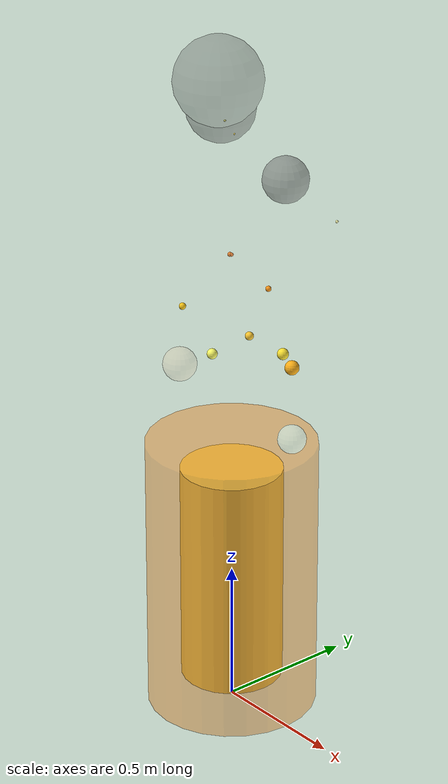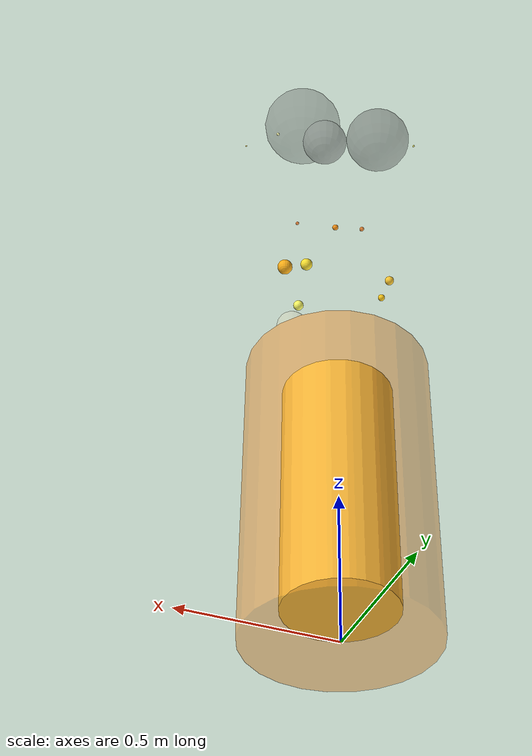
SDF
<?xml version="1.0"?>
<sdf version="1.6">
  <model name="fire">
    <static>true</static>
    <link name="fire_link">
      <pose>0 0 0.5 0 0 0</pose>

      <!-- Outer fire visual (transparent) -->
      <visual name="fire_visual">
        <geometry>
          <cylinder>
            <radius>0.3</radius>
            <length>1.0</length>
          </cylinder>
        </geometry>
        <material>
          <ambient>1 0.3 0 0.4</ambient>
          <diffuse>1 0.5 0 0.4</diffuse>
          <emissive>1 0.2 0 0.3</emissive>
        </material>
        <plugin filename="ignition-gazebo-thermal-system" name="ignition::gazebo::systems::Thermal">
          <temperature>1000.0</temperature>  <!-- Very hot: 727°C -->
        </plugin>
      </visual>

      <!-- Inner flame effect (smaller cylinder inside) -->
      <visual name="flame_effect">
        <pose>0 0 0 0 0 0</pose>
        <geometry>
          <cylinder>
            <radius>0.18</radius>
            <length>0.8</length>
          </cylinder>
        </geometry>
        <material>
          <ambient>1 0.8 0.2 0.9</ambient>
          <diffuse>1 0.9 0.4 0.9</diffuse>
          <emissive>1 0.7 0.3 0.8</emissive>
        </material>
      </visual>

      <!-- Particle effects - Sparks and embers -->
      <visual name="spark_1">
        <pose>0.15 0.1 0.85 0 0 0</pose>
        <geometry>
          <sphere>
            <radius>0.02</radius>
          </sphere>
        </geometry>
        <material>
          <ambient>1 0.8 0 1.0</ambient>
          <diffuse>1 0.9 0.2 1.0</diffuse>
          <emissive>1 0.9 0.3 1.0</emissive>
        </material>
      </visual>

      <visual name="spark_2">
        <pose>-0.12 0.18 0.8 0 0 0</pose>
        <geometry>
          <sphere>
            <radius>0.015</radius>
          </sphere>
        </geometry>
        <material>
          <ambient>1 0.7 0.1 1.0</ambient>
          <diffuse>1 0.8 0.2 1.0</diffuse>
          <emissive>1 0.8 0.4 1.0</emissive>
        </material>
      </visual>

      <visual name="spark_3">
        <pose>0.08 -0.15 0.9 0 0 0</pose>
        <geometry>
          <sphere>
            <radius>0.018</radius>
          </sphere>
        </geometry>
        <material>
          <ambient>1 0.9 0.2 1.0</ambient>
          <diffuse>1 1.0 0.4 1.0</diffuse>
          <emissive>1 1.0 0.5 1.0</emissive>
        </material>
      </visual>

      <visual name="spark_4">
        <pose>-0.2 -0.05 0.95 0 0 0</pose>
        <geometry>
          <sphere>
            <radius>0.012</radius>
          </sphere>
        </geometry>
        <material>
          <ambient>1 0.6 0 1.0</ambient>
          <diffuse>1 0.8 0.1 1.0</diffuse>
          <emissive>1 0.9 0.2 1.0</emissive>
        </material>
      </visual>

      <visual name="spark_5">
        <pose>0.22 0.08 0.83 0 0 0</pose>
        <geometry>
          <sphere>
            <radius>0.025</radius>
          </sphere>
        </geometry>
        <material>
          <ambient>1 0.5 0 1.0</ambient>
          <diffuse>1 0.7 0.1 1.0</diffuse>
          <emissive>1 0.8 0.2 1.0</emissive>
        </material>
      </visual>

      <!-- Rising ember particles -->
      <visual name="ember_1">
        <pose>0.05 0.12 1.05 0 0 0</pose>
        <geometry>
          <sphere>
            <radius>0.01</radius>
          </sphere>
        </geometry>
        <material>
          <ambient>1 0.4 0 0.9</ambient>
          <diffuse>1 0.6 0.1 0.9</diffuse>
          <emissive>1 0.7 0.2 0.8</emissive>
        </material>
      </visual>

      <visual name="ember_2">
        <pose>-0.08 0.06 1.15 0 0 0</pose>
        <geometry>
          <sphere>
            <radius>0.008</radius>
          </sphere>
        </geometry>
        <material>
          <ambient>1 0.3 0 0.8</ambient>
          <diffuse>1 0.5 0.1 0.8</diffuse>
          <emissive>1 0.6 0.2 0.7</emissive>
        </material>
      </visual>

      <visual name="ember_3">
        <pose>0.11 -0.09 1.25 0 0 0</pose>
        <geometry>
          <sphere>
            <radius>0.006</radius>
          </sphere>
        </geometry>
        <material>
          <ambient>1 0.2 0 0.7</ambient>
          <diffuse>1 0.4 0 0.7</diffuse>
          <emissive>1 0.5 0.1 0.6</emissive>
        </material>
      </visual>

      <!-- Smoke particles (darker, larger) -->
      <visual name="smoke_1">
        <pose>0.1 0.15 1.45 0 0 0</pose>
        <geometry>
          <sphere>
            <radius>0.08</radius>
          </sphere>
        </geometry>
        <material>
          <ambient>0.3 0.3 0.3 0.4</ambient>
          <diffuse>0.4 0.4 0.4 0.5</diffuse>
          <emissive>0.1 0.1 0.1 0.3</emissive>
        </material>
      </visual>

      <visual name="smoke_2">
        <pose>-0.15 0.08 1.65 0 0 0</pose>
        <geometry>
          <sphere>
            <radius>0.12</radius>
          </sphere>
        </geometry>
        <material>
          <ambient>0.2 0.2 0.2 0.3</ambient>
          <diffuse>0.3 0.3 0.3 0.4</diffuse>
          <emissive>0.05 0.05 0.05 0.2</emissive>
        </material>
      </visual>

      <visual name="smoke_3">
        <pose>0.08 -0.12 1.85 0 0 0</pose>
        <geometry>
          <sphere>
            <radius>0.15</radius>
          </sphere>
        </geometry>
        <material>
          <ambient>0.15 0.15 0.15 0.25</ambient>
          <diffuse>0.25 0.25 0.25 0.3</diffuse>
          <emissive>0.02 0.02 0.02 0.1</emissive>
        </material>
      </visual>

      <!-- Heat distortion effects (very transparent) -->
      <visual name="heat_shimmer_1">
        <pose>0.2 0.1 0.55 0 0 0</pose>
        <geometry>
          <sphere>
            <radius>0.05</radius>
          </sphere>
        </geometry>
        <material>
          <ambient>1 0.8 0.6 0.1</ambient>
          <diffuse>1 0.9 0.7 0.15</diffuse>
          <emissive>1 0.9 0.8 0.1</emissive>
        </material>
      </visual>

      <visual name="heat_shimmer_2">
        <pose>-0.18 -0.08 0.75 0 0 0</pose>
        <geometry>
          <sphere>
            <radius>0.06</radius>
          </sphere>
        </geometry>
        <material>
          <ambient>1 0.7 0.5 0.08</ambient>
          <diffuse>1 0.8 0.6 0.12</diffuse>
          <emissive>1 0.8 0.7 0.08</emissive>
        </material>
      </visual>

      <!-- Flying sparks (smaller, higher up) -->
      <visual name="flying_spark_1">
        <pose>0.3 0.2 1.35 0 0 0</pose>
        <geometry>
          <sphere>
            <radius>0.005</radius>
          </sphere>
        </geometry>
        <material>
          <ambient>1 1 0.5 1.0</ambient>
          <diffuse>1 1 0.7 1.0</diffuse>
          <emissive>1 1 0.8 1.0</emissive>
        </material>
      </visual>

      <visual name="flying_spark_2">
        <pose>-0.25 0.18 1.55 0 0 0</pose>
        <geometry>
          <sphere>
            <radius>0.004</radius>
          </sphere>
        </geometry>
        <material>
          <ambient>1 0.9 0.3 1.0</ambient>
          <diffuse>1 1 0.5 1.0</diffuse>
          <emissive>1 1 0.6 1.0</emissive>
        </material>
      </visual>

      <visual name="flying_spark_3">
        <pose>0.28 -0.22 1.75 0 0 0</pose>
        <geometry>
          <sphere>
            <radius>0.003</radius>
          </sphere>
        </geometry>
        <material>
          <ambient>1 0.8 0.2 1.0</ambient>
          <diffuse>1 0.9 0.4 1.0</diffuse>
          <emissive>1 1 0.5 1.0</emissive>
        </material>
      </visual>

      <!-- Collision component -->
      <collision name="fire_collision">
        <geometry>
          <cylinder>
            <radius>0.3</radius>
            <length>1.0</length>
          </cylinder>
        </geometry>
      </collision>
      <!-- Thermal properties on the fire link so the camera can see it -->
      <plugin filename="libignition-gazebo-thermal-system.so" name="ignition::gazebo::systems::Thermal">
        <temperature>
          <uniform>
            <temperature>673.15</temperature>  <!-- 400°C in Kelvin -->
          </uniform>
        </temperature>
      </plugin>
    </link>

  </model>
</sdf>
